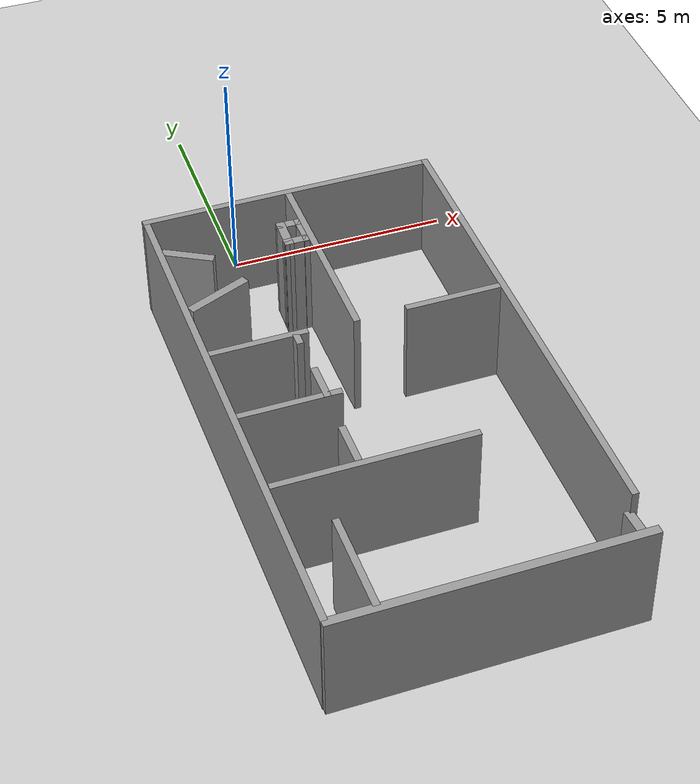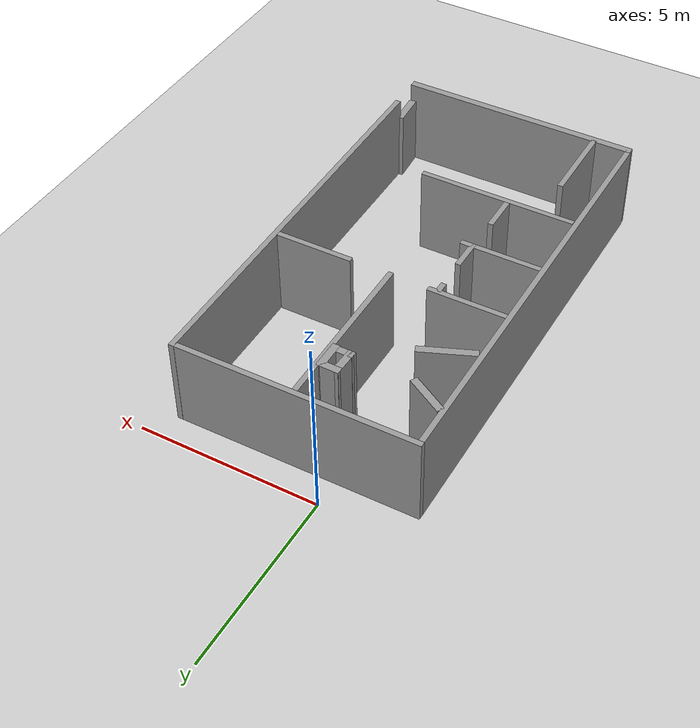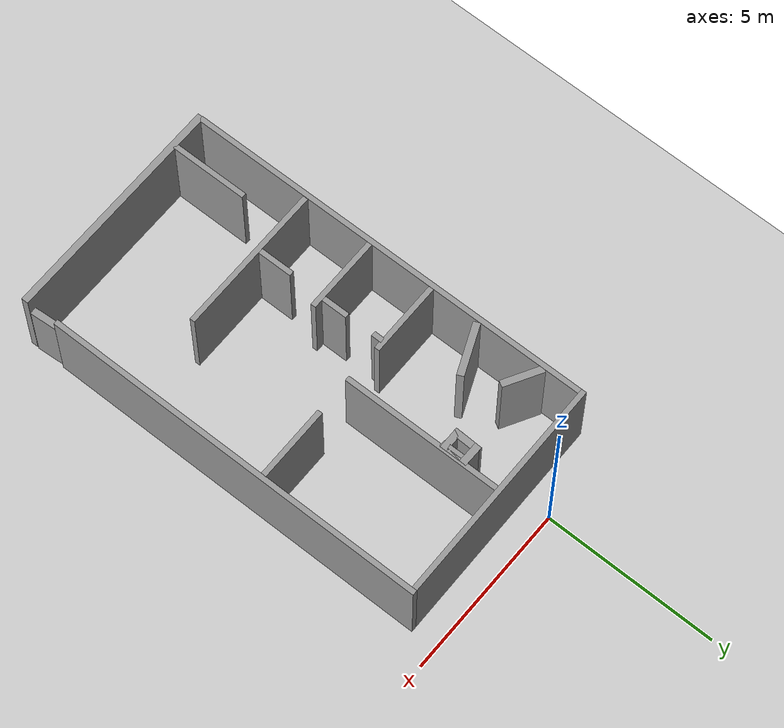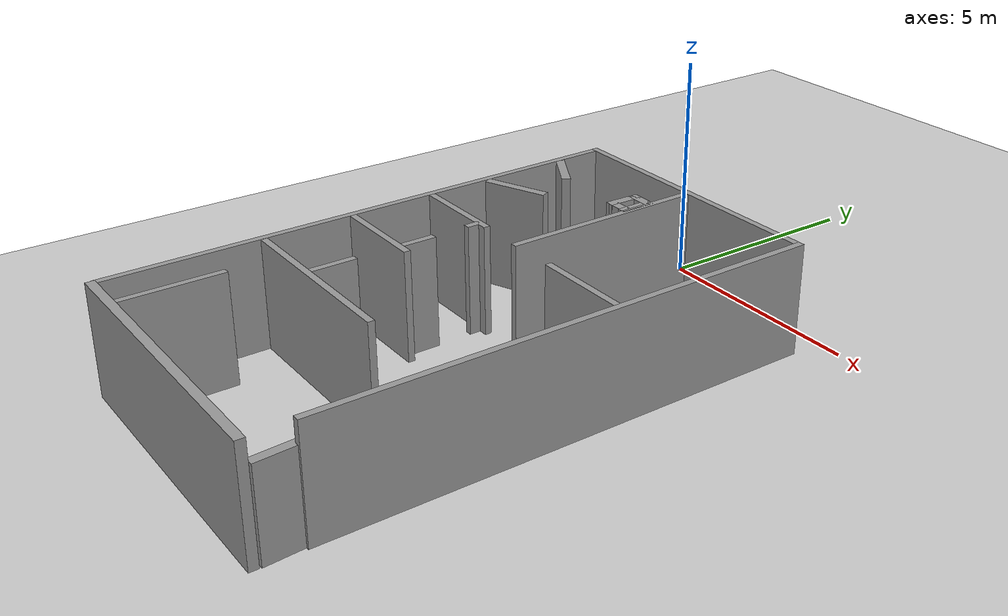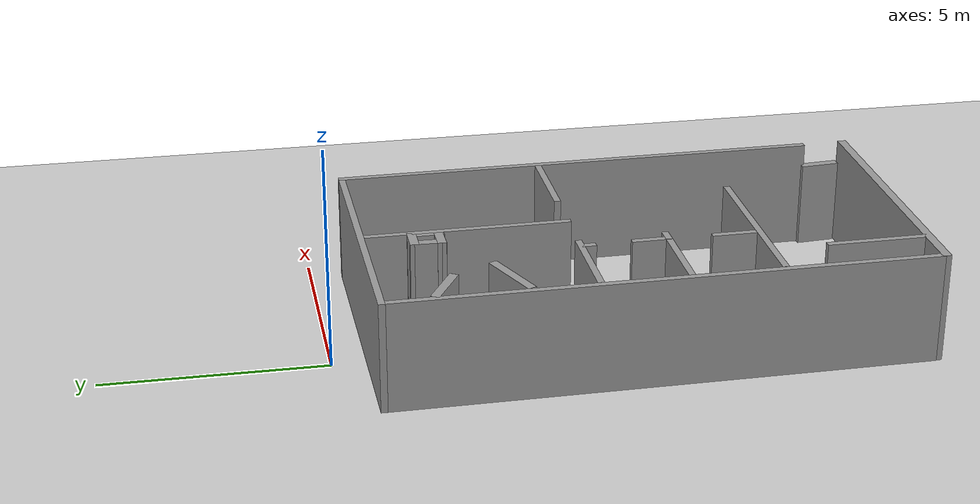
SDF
<?xml version="1.0" ?>
<sdf version='1.4'>
  <world name='default'>
    <!-- A global light source -->
    <include>
      <uri>model://sun</uri>
    </include>
    <!-- A ground plane -->
    <include>
      <uri>model://ground_plane</uri>
    </include>
    <!-- Own physics settings to speed up simulation -->
    <physics type='ode'>
      <max_step_size>0.01</max_step_size>
      <real_time_factor>1</real_time_factor>
      <real_time_update_rate>100</real_time_update_rate>
      <gravity>0 0 -9.8</gravity>
    </physics>
    <scene>
      <ambient>0.4 0.4 0.4 1</ambient>
      <background>0.7 0.7 0.7 1</background>
      <shadows>1</shadows>
    </scene>
    <spherical_coordinates>
      <surface_model>EARTH_WGS84</surface_model>
      <latitude_deg>0</latitude_deg>
      <longitude_deg>0</longitude_deg>
      <elevation>0</elevation>
      <heading_deg>0</heading_deg>
    </spherical_coordinates>
    <!-- INSERT: Bound and Obstacles here -->

<model name='partnerX2'>
    <pose>0 0 0 0 0 0.01</pose>
    <link name='Door_7'>
      <collision name='Door_7_Collision'>
        <geometry>
          <box>
            <size>0.9 0.2 2</size>
          </box>
        </geometry>
        <pose>0 0 1 0 -0 0</pose>
      </collision>
      <visual name='Door_7_Visual'>
        <pose>0 0 1 0 -0 0</pose>
        <geometry>
          <box>
            <size>0.9 0.2 2</size>
          </box>
        </geometry>
        <material>
          <script>
            <uri>file://media/materials/scripts/gazebo.material</uri>
            <name>Gazebo/Grey</name>
          </script>
        </material>
      </visual>
      <velocity_decay>
        <linear>0</linear>
        <angular>0</angular>
      </velocity_decay>
      <pose>4.29262 -12.3678 0 0 0 -1.5051</pose>
    </link>

    <link name='Wall_0'>
      <collision name='Wall_0_Collision'>
        <geometry>
          <box>
            <size>6.55 0.15 2.5</size>
          </box>
        </geometry>
        <pose>0 0 1.25 0 -0 0</pose>
      </collision>
      <visual name='Wall_0_Visual'>
        <pose>0 0 1.25 0 -0 0</pose>
        <geometry>
          <box>
            <size>6.55 0.15 2.5</size>
          </box>
        </geometry>
        <material>
          <script>
            <uri>file://media/materials/scripts/gazebo.material</uri>
            <name>Gazebo/Grey</name>
          </script>
        </material>
      </visual>
      <velocity_decay>
        <linear>0</linear>
        <angular>0</angular>
      </velocity_decay>
      <pose>1 -0.84 0 0 -0 0</pose>
    </link>
    <link name='Wall_12'>
      <collision name='Wall_12_Collision'>
        <geometry>
          <box>
            <size>11.2163 0.15 2.5</size>
          </box>
        </geometry>
        <pose>0 0 1.25 0 -0 0</pose>
      </collision>
      <visual name='Wall_12_Visual'>
        <pose>0 0 1.25 0 -0 0</pose>
        <geometry>
          <box>
            <size>11.2163 0.15 2.5</size>
          </box>
        </geometry>
        <material>
          <script>
            <uri>file://media/materials/scripts/gazebo.material</uri>
            <name>Gazebo/Grey</name>
          </script>
        </material>
      </visual>
      <velocity_decay>
        <linear>0</linear>
        <angular>0</angular>
      </velocity_decay>
      <pose>4.35192 -6.37253 0 0 0 -1.5708</pose>
    </link>
    <link name='Wall_18'>
      <collision name='Wall_18_Collision'>
        <geometry>
          <box>
            <size>2.12818 0.15 2.5</size>
          </box>
        </geometry>
        <pose>0 0 1.25 0 -0 0</pose>
      </collision>
      <visual name='Wall_18_Visual'>
        <pose>0 0 1.25 0 -0 0</pose>
        <geometry>
          <box>
            <size>2.12818 0.15 2.5</size>
          </box>
        </geometry>
        <material>
          <script>
            <uri>file://media/materials/scripts/gazebo.material</uri>
            <name>Gazebo/Grey</name>
          </script>
        </material>
      </visual>
      <velocity_decay>
        <linear>0</linear>
        <angular>0</angular>
      </velocity_decay>
      <pose>3.21709 -5.4475 0 0 -0 0</pose>
    </link>
    <link name='Wall_22'>
      <collision name='Wall_22_Collision'>
        <geometry>
          <box>
            <size>2.2 0.15 2.5</size>
          </box>
        </geometry>
        <pose>0 0 1.25 0 -0 0</pose>
      </collision>
      <visual name='Wall_22_Visual'>
        <pose>0 0 1.25 0 -0 0</pose>
        <geometry>
          <box>
            <size>2.2 0.15 2.5</size>
          </box>
        </geometry>
        <material>
          <script>
            <uri>file://media/materials/scripts/gazebo.material</uri>
            <name>Gazebo/Grey</name>
          </script>
        </material>
      </visual>
      <velocity_decay>
        <linear>0</linear>
        <angular>0</angular>
      </velocity_decay>
      <pose>-1.02483 -7.37903 0 0 -0 0</pose>
    </link>
    <link name='Wall_24'>
      <collision name='Wall_24_Collision'>
        <geometry>
          <box>
            <size>0.897 0.15 2.5</size>
          </box>
        </geometry>
        <pose>0 0 1.25 0 -0 0</pose>
      </collision>
      <visual name='Wall_24_Visual'>
        <pose>0 0 1.25 0 -0 0</pose>
        <geometry>
          <box>
            <size>0.897 0.15 2.5</size>
          </box>
        </geometry>
        <material>
          <script>
            <uri>file://media/materials/scripts/gazebo.material</uri>
            <name>Gazebo/Grey</name>
          </script>
        </material>
      </visual>
      <velocity_decay>
        <linear>0</linear>
        <angular>0</angular>
      </velocity_decay>
      <pose>-0.2445 -7.0055 0 0 -0 1.5708</pose>
    </link>
    <link name='Wall_3'>
      <collision name='Wall_3_Collision'>
        <geometry>
          <box>
            <size>12 0.15 2.5</size>
          </box>
        </geometry>
        <pose>0 0 1.25 0 -0 0</pose>
      </collision>
      <visual name='Wall_3_Visual'>
        <pose>0 0 1.25 0 -0 0</pose>
        <geometry>
          <box>
            <size>12 0.15 2.5</size>
          </box>
        </geometry>
        <material>
          <script>
            <uri>file://media/materials/scripts/gazebo.material</uri>
            <name>Gazebo/Grey</name>
          </script>
        </material>
      </visual>
      <velocity_decay>
        <linear>0</linear>
        <angular>0</angular>
      </velocity_decay>
      <pose>-2.2 -6.915 0 0 0 -1.5708</pose>
    </link>
    <link name='Wall_32'>
      <collision name='Wall_32_Collision'>
        <geometry>
          <box>
            <size>0.322527 0.15 2.5</size>
          </box>
        </geometry>
        <pose>0 0 1.25 0 -0 0</pose>
      </collision>
      <visual name='Wall_32_Visual'>
        <pose>0 0 1.25 0 -0 0</pose>
        <geometry>
          <box>
            <size>0.322527 0.15 2.5</size>
          </box>
        </geometry>
        <material>
          <script>
            <uri>file://media/materials/scripts/gazebo.material</uri>
            <name>Gazebo/Grey</name>
          </script>
        </material>
      </visual>
      <velocity_decay>
        <linear>0</linear>
        <angular>0</angular>
      </velocity_decay>
      <pose>-0.267 -5.6025 0 0 0 -1.5708</pose>
    </link>
    <link name='Wall_36'>
      <collision name='Wall_36_Collision'>
        <geometry>
          <box>
            <size>0.998227 0.15 2.5</size>
          </box>
        </geometry>
        <pose>0 0 1.25 0 -0 0</pose>
      </collision>
      <visual name='Wall_36_Visual'>
        <pose>0 0 1.25 0 -0 0</pose>
        <geometry>
          <box>
            <size>0.998227 0.15 2.5</size>
          </box>
        </geometry>
        <material>
          <script>
            <uri>file://media/materials/scripts/gazebo.material</uri>
            <name>Gazebo/Grey</name>
          </script>
        </material>
      </visual>
      <velocity_decay>
        <linear>0</linear>
        <angular>0</angular>
      </velocity_decay>
      <pose>-0.274841 -8.84358 0 0 0 -1.5708</pose>
    </link>
    <link name='Wall_38'>
      <collision name='Wall_38_Collision'>
        <geometry>
          <box>
            <size>4.35 0.15 2.5</size>
          </box>
        </geometry>
        <pose>0 0 1.25 0 -0 0</pose>
      </collision>
      <visual name='Wall_38_Visual'>
        <pose>0 0 1.25 0 -0 0</pose>
        <geometry>
          <box>
            <size>4.35 0.15 2.5</size>
          </box>
        </geometry>
        <material>
          <script>
            <uri>file://media/materials/scripts/gazebo.material</uri>
            <name>Gazebo/Grey</name>
          </script>
        </material>
      </visual>
      <velocity_decay>
        <linear>0</linear>
        <angular>0</angular>
      </velocity_decay>
      <pose>0.059609 -9.4197 0 0 -0 0</pose>
    </link>
    <link name='Wall_40'>
      <collision name='Wall_40_Collision'>
        <geometry>
          <box>
            <size>2.25908 0.15 2.5</size>
          </box>
        </geometry>
        <pose>0 0 1.25 0 -0 0</pose>
      </collision>
      <visual name='Wall_40_Visual'>
        <pose>0 0 1.25 0 -0 0</pose>
        <geometry>
          <box>
            <size>2.25908 0.15 2.5</size>
          </box>
        </geometry>
        <material>
          <script>
            <uri>file://media/materials/scripts/gazebo.material</uri>
            <name>Gazebo/Grey</name>
          </script>
        </material>
      </visual>
      <velocity_decay>
        <linear>0</linear>
        <angular>0</angular>
      </velocity_decay>
      <pose>-1.19661 -11.7737 0 0 0 -1.5708</pose>
    </link>
    <link name='Wall_43'>
      <collision name='Wall_43_Collision'>
        <geometry>
          <box>
            <size>6.66612 0.2 2.5</size>
          </box>
        </geometry>
        <pose>0 0 1.25 0 -0 0</pose>
      </collision>
      <visual name='Wall_43_Visual'>
        <pose>0 0 1.25 0 -0 0</pose>
        <geometry>
          <box>
            <size>6.66612 0.2 2.5</size>
          </box>
        </geometry>
        <material>
          <script>
            <uri>file://media/materials/scripts/gazebo.material</uri>
            <name>Gazebo/Grey</name>
          </script>
        </material>
      </visual>
      <velocity_decay>
        <linear>0</linear>
        <angular>0</angular>
      </velocity_decay>
      <pose>1.07405 -12.9467 0 0 -0 0</pose>
    </link>
    <link name='Wall_5'>
      <collision name='Wall_5_Collision'>
        <geometry>
          <box>
            <size>4.58875 0.15 2.5</size>
          </box>
        </geometry>
        <pose>0 0 1.25 0 -0 0</pose>
      </collision>
      <visual name='Wall_5_Visual'>
        <pose>0 0 1.25 0 -0 0</pose>
        <geometry>
          <box>
            <size>4.58875 0.15 2.5</size>
          </box>
        </geometry>
        <material>
          <script>
            <uri>file://media/materials/scripts/gazebo.material</uri>
            <name>Gazebo/Grey</name>
          </script>
        </material>
      </visual>
      <velocity_decay>
        <linear>0</linear>
        <angular>0</angular>
      </velocity_decay>
      <pose>1.0575 -3.20938 0 0 0 -1.5708</pose>
    </link>
    <link name='Wall_7'>
      <collision name='Wall_7_Collision'>
        <geometry>
          <box>
            <size>2.12726 0.15 2.5</size>
          </box>
        </geometry>
        <pose>0 0 1.25 0 -0 0</pose>
      </collision>
      <visual name='Wall_7_Visual'>
        <pose>0 0 1.25 0 -0 0</pose>
        <geometry>
          <box>
            <size>2.12726 0.15 2.5</size>
          </box>
        </geometry>
        <material>
          <script>
            <uri>file://media/materials/scripts/gazebo.material</uri>
            <name>Gazebo/Grey</name>
          </script>
        </material>
      </visual>
      <velocity_decay>
        <linear>0</linear>
        <angular>0</angular>
      </velocity_decay>
      <pose>-1.05893 -5.43244 0 0 -0 0</pose>
    </link>
<link name='Wall_2'>
      <collision name='Wall_2_Collision'>
        <geometry>
          <box>
            <size>1.49958 0.2 2.5</size>
          </box>
        </geometry>
        <pose>0 0 1.25 0 -0 0</pose>
      </collision>
      <visual name='Wall_2_Visual'>
        <pose>0 0 1.25 0 -0 0</pose>
        <geometry>
          <box>
            <size>1.49958 0.2 2.5</size>
          </box>
        </geometry>
        <material>
          <script>
            <uri>file://media/materials/scripts/gazebo.material</uri>
            <name>Gazebo/Grey</name>
          </script>
        </material>
      </visual>
      <velocity_decay>
        <linear>0</linear>
        <angular>0</angular>
      </velocity_decay>
      <pose>-1.40382 -3.70244 0 0 0 -2.74889</pose>
    </link>
    <link name='Wall_4'>
      <collision name='Wall_4_Collision'>
        <geometry>
          <box>
            <size>0.810501 0.2 2.5</size>
          </box>
        </geometry>
        <pose>0 0 1.25 0 -0 0</pose>
      </collision>
      <visual name='Wall_4_Visual'>
        <pose>0 0 1.25 0 -0 0</pose>
        <geometry>
          <box>
            <size>0.810501 0.2 2.5</size>
          </box>
        </geometry>
        <material>
          <script>
            <uri>file://media/materials/scripts/gazebo.material</uri>
            <name>Gazebo/Grey</name>
          </script>
        </material>
      </visual>
      <velocity_decay>
        <linear>0</linear>
        <angular>0</angular>
      </velocity_decay>
      <pose>0.960025 -2.25138 0 0 -0 1.5708</pose>
    </link>
    <link name='Wall_5'>
      <collision name='Wall_5_Collision'>
        <geometry>
          <box>
            <size>0.608388 0.2 2.5</size>
          </box>
        </geometry>
        <pose>0 0 1.25 0 -0 0</pose>
      </collision>
      <visual name='Wall_5_Visual'>
        <pose>0 0 1.25 0 -0 0</pose>
        <geometry>
          <box>
            <size>0.608388 0.2 2.5</size>
          </box>
        </geometry>
        <material>
          <script>
            <uri>file://media/materials/scripts/gazebo.material</uri>
            <name>Gazebo/Grey</name>
          </script>
        </material>
      </visual>
      <velocity_decay>
        <linear>0</linear>
        <angular>0</angular>
      </velocity_decay>
      <pose>0.755867 -1.94235 0 0 -0 3.12308</pose>
    </link>
    <link name='Wall_6'>
      <collision name='Wall_6_Collision'>
        <geometry>
          <box>
            <size>0.795728 0.2 2.5</size>
          </box>
        </geometry>
        <pose>0 0 1.25 0 -0 0</pose>
      </collision>
      <visual name='Wall_6_Visual'>
        <pose>0 0 1.25 0 -0 0</pose>
        <geometry>
          <box>
            <size>0.795728 0.2 2.5</size>
          </box>
        </geometry>
        <material>
          <script>
            <uri>file://media/materials/scripts/gazebo.material</uri>
            <name>Gazebo/Grey</name>
          </script>
        </material>
      </visual>
      <velocity_decay>
        <linear>0</linear>
        <angular>0</angular>
      </velocity_decay>
      <pose>0.540323 -2.23621 0 0 0 -1.60903</pose>
    </link>
    <link name='Wall_7'>
      <collision name='Wall_7_Collision'>
        <geometry>
          <box>
            <size>0.631068 0.2 2.5</size>
          </box>
        </geometry>
        <pose>0 0 1.25 0 -0 0</pose>
      </collision>
      <visual name='Wall_7_Visual'>
        <pose>0 0 1.25 0 -0 0</pose>
        <geometry>
          <box>
            <size>0.631068 0.2 2.5</size>
          </box>
        </geometry>
        <material>
          <script>
            <uri>file://media/materials/scripts/gazebo.material</uri>
            <name>Gazebo/Grey</name>
          </script>
        </material>
      </visual>
      <velocity_decay>
        <linear>0</linear>
        <angular>0</angular>
      </velocity_decay>
      <pose>0.744472 -2.53386 0 0 -0 0</pose>
    </link>
    <link name='Wall_9'>
      <collision name='Wall_9_Collision'>
        <geometry>
          <box>
            <size>1.14286 0.2 2.5</size>
          </box>
        </geometry>
        <pose>0 0 1.25 0 -0 0</pose>
      </collision>
      <visual name='Wall_9_Visual'>
        <pose>0 0 1.25 0 -0 0</pose>
        <geometry>
          <box>
            <size>1.14286 0.2 2.5</size>
          </box>
        </geometry>
        <material>
          <script>
            <uri>file://media/materials/scripts/gazebo.material</uri>
            <name>Gazebo/Grey</name>
          </script>
        </material>
      </visual>
      <velocity_decay>
        <linear>0</linear>
        <angular>0</angular>
      </velocity_decay>
      <pose>-1.64219 -2.23773 0 0 -0 2.61791</pose>
    </link>
    <static>1</static>
  </model>

    <gui fullscreen='0'>
      <camera name='user_camera'>
        <pose>0 0 10 0 1.57079 1.57079</pose>
        <view_controller>orbit</view_controller>
      </camera>
    </gui>
  </world>
</sdf>
